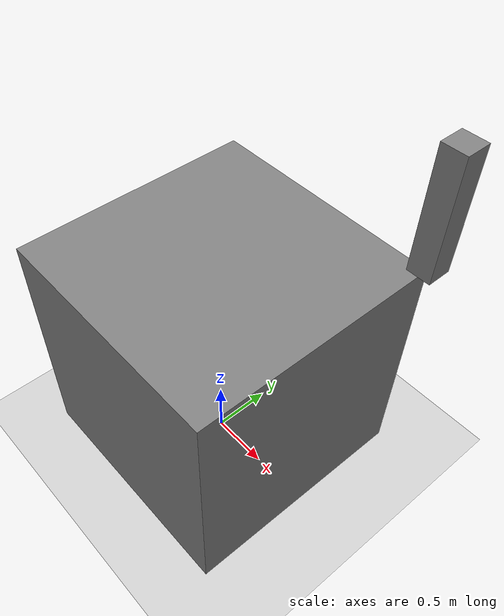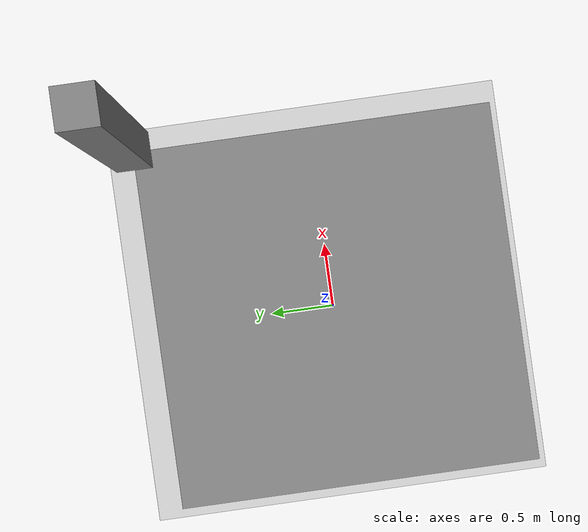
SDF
<?xml version="1.0" ?>
<sdf version="1.6">
  <world name="empty">
    <physics name="1ms" type="ignored">
      <max_step_size>0.001</max_step_size>
      <real_time_factor>1.0</real_time_factor>
    </physics>
    <plugin
      filename="gz-sim-physics-system"
      name="gz::sim::systems::Physics">
    </plugin>
    <plugin
      filename="gz-sim-user-commands-system"
      name="gz::sim::systems::UserCommands">
    </plugin>
    <plugin
      filename="gz-sim-scene-broadcaster-system"
      name="gz::sim::systems::SceneBroadcaster">
    </plugin>
    <plugin
      filename="gz-sim-contact-system"
      name="gz::sim::systems::Contact">
    </plugin>

    <light type="directional" name="sun">
      <cast_shadows>true</cast_shadows>
      <pose>0 0 10 0 0 0</pose>
      <diffuse>0.8 0.8 0.8 1</diffuse>
      <specular>0.2 0.2 0.2 1</specular>
      <attenuation>
        <range>1000</range>
        <constant>0.9</constant>
        <linear>0.01</linear>
        <quadratic>0.001</quadratic>
      </attenuation>
      <direction>-0.5 0.1 -0.9</direction>
    </light>

    <model name="ground_plane">
      <static>true</static>
      <link name="link">
        <collision name="collision">
          <geometry>
            <plane>
              <normal>0 0 1</normal>
              <size>100 100</size>
            </plane>
          </geometry>
        </collision>
        <visual name="visual">
          <geometry>
            <plane>
              <normal>0 0 1</normal>
              <size>100 100</size>
            </plane>
          </geometry>
          <material>
            <ambient>0.8 0.8 0.8 1</ambient>
            <diffuse>0.8 0.8 0.8 1</diffuse>
            <specular>0.8 0.8 0.8 1</specular>
          </material>
        </visual>
      </link>
    </model>

    <model name="box">
      <pose>0 0 1 0 0 0</pose>
      <link name="box_link">
        <collision name="collision">
          <geometry>
            <box>
              <size>2 2 2</size>
            </box>
          </geometry>
        </collision>
        <visual name="visual">
          <geometry>
            <box>
              <size>2 2 2</size>
            </box>
          </geometry>
          <material>
            <ambient>0.5 0.5 0.5 1</ambient>
            <diffuse>0.5 0.5 0.5 1</diffuse>
            <specular>0.5 0.5 0.5 1</specular>
          </material>
        </visual>
      </link>
      <plugin
        filename="/home/dlee/ros2_ws/install/sar_gazebo/lib/libPractice.so"
        name="gz::sim::systems::Practice">
        <parent_link>box_link</parent_link>
        <child_model>stick</child_model>
        <child_link>link</child_link>
        <detach_topic>/model/box_stick_model/detachable_joint/detach</detach_topic>
        <attach_topic>/model/box_stick_model/detachable_joint/attach</attach_topic>
        <output_topic>/model/box_stick_model/detachable_joint/state</output_topic>
      </plugin>
    </model>

    <model name="stick">
      <pose>1 1 2.5 0 0 0</pose>
      <link name="link">
        <collision name="collision">
          <geometry>
            <box>
              <size>0.2 0.2 1</size>
            </box>
          </geometry>
        </collision>
        <visual name="visual">
          <geometry>
            <box>
              <size>0.2 0.2 1</size>
            </box>
          </geometry>
          <material>
            <ambient>0.5 0.5 0.5 1</ambient>
            <diffuse>0.5 0.5 0.5 1</diffuse>
            <specular>0.5 0.5 0.5 1</specular>
          </material>
        </visual>
        <sensor name="contact_sensor" type="contact">
          <contact>
            <collision>collision</collision>
            <topic>/box/contact</topic>
          </contact>
          <always_on>1</always_on>
          <update_rate>100</update_rate>
        </sensor>
      </link>
    </model>

  </world>
</sdf>
